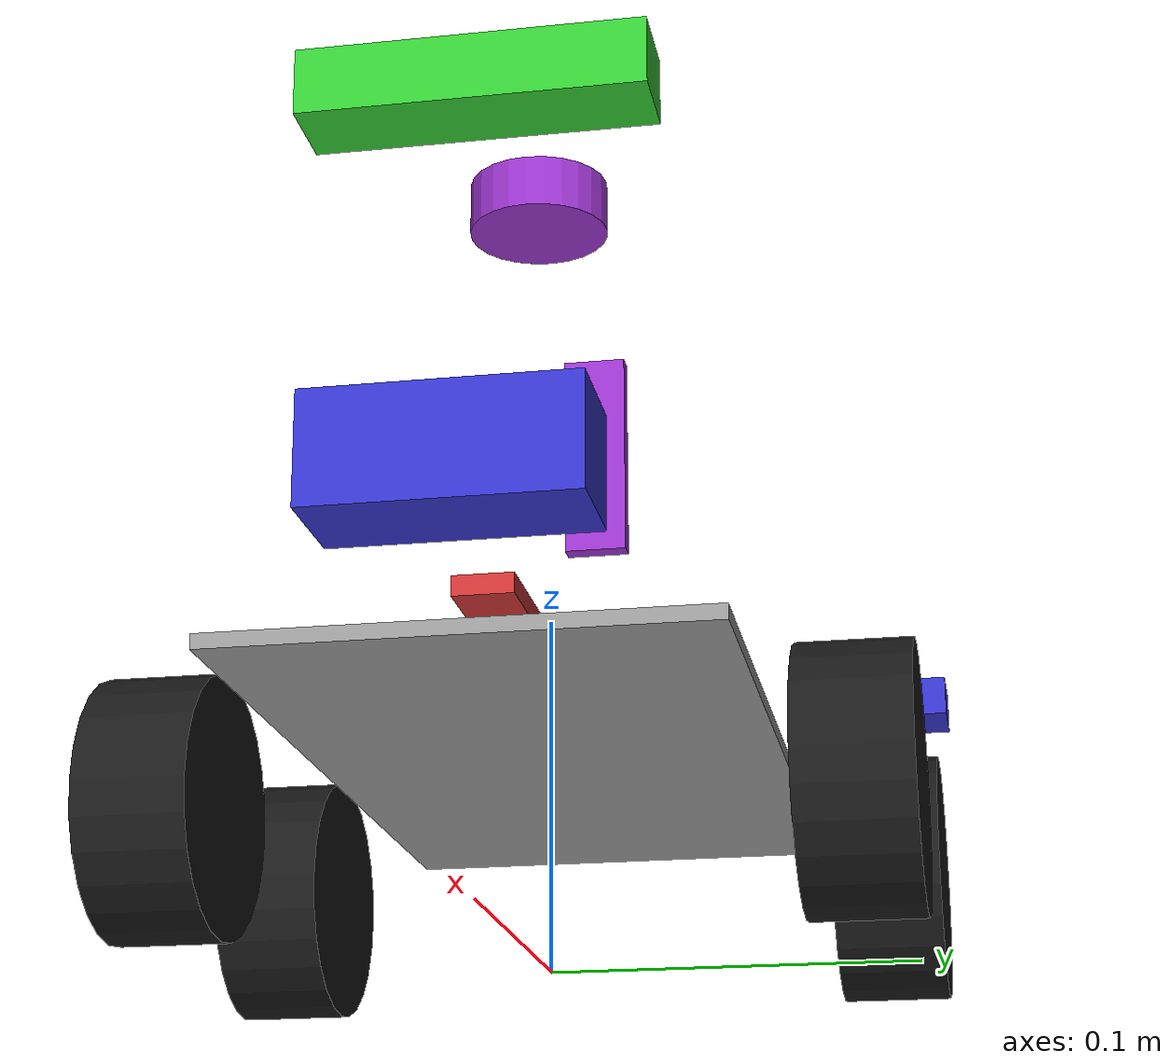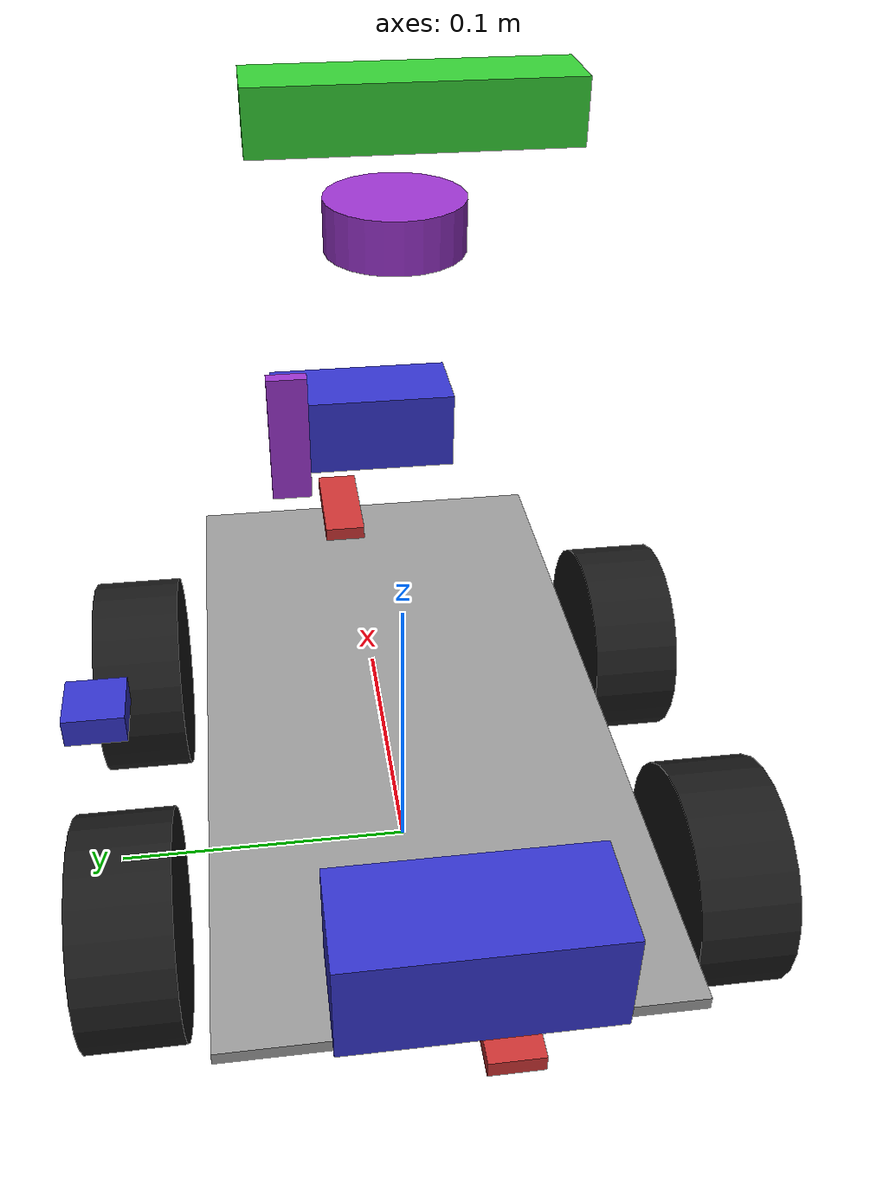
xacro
<?xml version="1.0"?>
<robot xmlns:xacro="http://www.ros.org/wiki/xacro" name="jetcar">

  <xacro:arg name="sim_mode" default="false"/>

  <!-- Material Definitions -->
  <material name="gray"><color rgba="0.6 0.6 0.6 1"/></material>
  <material name="black"><color rgba="0.1 0.1 0.1 1"/></material>
  <material name="blue"><color rgba="0.2 0.2 0.8 1"/></material>
  <material name="red"><color rgba="0.8 0.2 0.2 1"/></material>
  <material name="green"><color rgba="0.2 0.8 0.2 1"/></material>
  <material name="yellow"><color rgba="0.8 0.8 0.2 1"/></material>
  <material name="purple"><color rgba="0.6 0.2 0.8 1"/></material>

  <!-- Chassis (base_link) -->
  <link name="base_link">
    <visual>
      <geometry><box size="0.25 0.13 0.004"/></geometry>
      <origin xyz="0 0 0.06"/>
      <material name="gray"/>
    </visual>
    <collision>
      <geometry><box size="0.25 0.13 0.05"/></geometry>
      <origin xyz="0 0 0.07"/>
    </collision>
    <inertial>
      <mass value="2.0"/>
      <origin xyz="0 0 0.04"/>
      <inertia ixx="0.01" ixy="0.0" ixz="0.0" iyy="0.02" iyz="0.0" izz="0.03"/>
    </inertial>
  </link>

  <!-- Wheels Macro -->
  <xacro:macro name="wheel" params="prefix x y">
    <link name="wheel_${prefix}">
      <visual>
        <geometry><cylinder length="0.03" radius="0.035"/></geometry>
        <origin xyz="0 0 0" rpy="1.5708 0 0"/>
        <material name="black"/>
      </visual>
      <collision>
        <geometry><sphere radius="0.035"/></geometry>
        <origin xyz="0 0 0" rpy="0 0 0"/>
      </collision>
      <inertial>
        <mass value="0.5"/>
        <inertia ixx="0.001" ixy="0" ixz="0" iyy="0.001" iyz="0" izz="0.001"/>
      </inertial>
    </link>
    <joint name="joint_wheel_${prefix}" type="continuous">
      <parent link="base_link"/>
      <child link="wheel_${prefix}"/>
      <origin xyz="${x} ${y} 0.035" rpy="0 0 0"/>
      <axis xyz="0 1 0"/>
      <dynamics damping="0.3" friction="0.1"/>
    </joint>
  </xacro:macro>

  <xacro:wheel prefix="fl" x="0.06" y="0.09"/>
  <xacro:wheel prefix="fr" x="0.06" y="-0.09"/>
  <xacro:wheel prefix="rl" x="-0.06" y="0.09"/>
  <xacro:wheel prefix="rr" x="-0.06" y="-0.09"/>

  <!-- Sensors & Accessories -->
  <link name="front_sonar"><visual><geometry><box size="0.03 0.07 0.03"/></geometry><origin xyz="0 0 0.06"/><material name="blue"/></visual></link>
  <joint name="joint_sr04_front" type="fixed"><parent link="base_link"/><child link="front_sonar"/><origin xyz="0.13 0 0.04"/></joint>

  <link name="rear_sonar"><visual><geometry><box size="0.03 0.07 0.03"/></geometry><origin xyz="0 0 0.06"/><material name="blue"/></visual></link>
  <joint name="joint_sr04_rear" type="fixed"><parent link="base_link"/><child link="rear_sonar"/><origin xyz="-0.13 0 0.04" rpy="0 0 3.14159"/></joint>

  <!-- Cliff Sensors -->
  <link name="cliff_front"><visual><geometry><box size="0.04 0.015 0.005"/></geometry><origin xyz="0 0 0.055"/><material name="red"/></visual></link>
  <joint name="joint_cliff_front" type="fixed"><parent link="base_link"/><child link="cliff_front"/><origin xyz="0.12 0.01 0.01"/></joint>

  <link name="cliff_rear"><visual><geometry><box size="0.04 0.015 0.005"/></geometry><origin xyz="0 0 0.055"/><material name="red"/></visual></link>
  <joint name="joint_cliff_rear" type="fixed"><parent link="base_link"/><child link="cliff_rear"/><origin xyz="-0.12 -0.01 0.01"/></joint>

  <!-- Camera -->
  <link name="camera_binoc"><visual><geometry><box size="0.025 0.10 0.02"/></geometry><origin xyz="0 0 0.06"/><material name="green"/></visual></link>
  <joint name="joint_camera_binoc" type="fixed"><parent link="base_link"/><child link="camera_binoc"/><origin xyz="0.06 -0.01 0.18"/></joint>

  <link name="camera_link"/>
  <joint name="joint_camera_link" type="fixed"><parent link="camera_binoc"/><child link="camera_link"/><origin xyz="0 0 0"/></joint>

  <!-- Logical Frames for RealSense -->
  <link name="camera_depth_frame"/>
  <joint name="joint_camera_depth_frame" type="fixed"><parent link="camera_link"/><child link="camera_depth_frame"/><origin xyz="0 0 0"/></joint>
  <link name="camera_depth_optical_frame"/>
  <joint name="joint_camera_depth_optical_frame" type="fixed"><parent link="camera_depth_frame"/><child link="camera_depth_optical_frame"/><origin xyz="0 0 0" rpy="-1.5708 0 -1.5708"/></joint>

  <link name="camera_infra1_frame"/>
  <joint name="joint_camera_infra1_frame" type="fixed"><parent link="camera_link"/><child link="camera_infra1_frame"/><origin xyz="0 0.025 0"/></joint>
  <link name="camera_infra1_optical_frame"/>
  <joint name="joint_camera_infra1_optical_frame" type="fixed"><parent link="camera_infra1_frame"/><child link="camera_infra1_optical_frame"/><origin xyz="0 0 0" rpy="-1.5708 0 -1.5708"/></joint>

  <link name="camera_infra2_frame"/>
  <joint name="joint_camera_infra2_frame" type="fixed"><parent link="camera_link"/><child link="camera_infra2_frame"/><origin xyz="0 -0.025 0"/></joint>
  <link name="camera_infra2_optical_frame"/>
  <joint name="joint_camera_infra2_optical_frame" type="fixed"><parent link="camera_infra2_frame"/><child link="camera_infra2_optical_frame"/><origin xyz="0 0 0" rpy="-1.5708 0 -1.5708"/></joint>

  <!-- Lidar & Other Sensors -->
  <link name="ld06_lidar"><visual><geometry><cylinder length="0.015" radius="0.02"/></geometry><material name="purple"/></visual><inertial><mass value="0.1"/><inertia ixx="0.001" ixy="0" ixz="0" iyy="0.001" iyz="0" izz="0.001"/></inertial></link>
  <joint name="joint_ld06" type="fixed"><parent link="base_link"/><child link="ld06_lidar"/><origin xyz="0.02 0.0 0.22" rpy="0 0 -1.5708"/></joint>

  <link name="imu_link"><visual><geometry><box size="0.02 0.02 0.01"/></geometry><material name="blue"/></visual><inertial><mass value="0.01"/><inertia ixx="0.0001" ixy="0" ixz="0" iyy="0.0001" iyz="0" izz="0.0001"/></inertial></link>
  <joint name="joint_imu" type="fixed"><parent link="base_link"/><child link="imu_link"/><origin xyz="0 0.1 0.07"/></joint>

  <!-- ToF & Radar (Visuals only) -->
  <link name="vl53l5x_front"><visual><geometry><box size="0.01 0.02 0.01"/></geometry><origin xyz="0 0 0.06"/><material name="yellow"/></visual></link>
  <joint name="joint_vl53l5x_front" type="fixed"><parent link="base_link"/><child link="vl53l5x_front"/><origin xyz="0.13 0 0.045"/></joint>

  <link name="ld2450_front"><visual><geometry><box size="0.005 0.015 0.05"/></geometry><origin xyz="0 0 0.06"/><material name="purple"/></visual></link>
  <joint name="joint_ld2450_front" type="fixed"><parent link="base_link"/><child link="ld2450_front"/><origin xyz="0.1 0.03 0.05"/></joint>

  <!-- Simulation Specific Tags -->
  <xacro:if value="$(arg sim_mode)">
    <ros2_control name="GazeboSimSystem" type="system">
      <hardware><plugin>ign_ros2_control/IgnitionSystem</plugin></hardware>
      <joint name="joint_wheel_fl"><command_interface name="effort"/><state_interface name="position"/><state_interface name="velocity"/><state_interface name="effort"/></joint>
      <joint name="joint_wheel_fr"><command_interface name="effort"/><state_interface name="position"/><state_interface name="velocity"/><state_interface name="effort"/></joint>
      <joint name="joint_wheel_rl"><command_interface name="effort"/><state_interface name="position"/><state_interface name="velocity"/><state_interface name="effort"/></joint>
      <joint name="joint_wheel_rr"><command_interface name="effort"/><state_interface name="position"/><state_interface name="velocity"/><state_interface name="effort"/></joint>
    </ros2_control>

    <gazebo>
      <plugin filename="ign_ros2_control-system" name="ign_ros2_control::IgnitionROS2ControlPlugin">
        <parameters>$(find jetcar_sim)/config/sim_controllers.yaml</parameters>
      </plugin>
      <plugin filename="libignition-gazebo-odometry-publisher-system.so" name="ignition::gazebo::systems::OdometryPublisher">
        <odom_frame>odom</odom_frame>
        <robot_base_frame>base_link</robot_base_frame>
        <odom_publish_frequency>50</odom_publish_frequency>
        <tf_topic>/model/jetcar/tf</tf_topic>
      </plugin>
    </gazebo>

    <gazebo reference="camera_binoc">
      <sensor name="camera" type="rgbd">
        <gz_frame_id>camera_binoc</gz_frame_id>
        <topic>/model/jetcar/sensor/camera</topic>
        <always_on>true</always_on>
        <update_rate>15</update_rate>
        <camera>
          <horizontal_fov>1.204</horizontal_fov>
          <image><width>424</width><height>240</height><format>R8G8B8</format></image>
          <clip><near>0.1</near><far>10.0</far></clip>
        </camera>
      </sensor>
    </gazebo>

    <!-- Left IR (Infra1) -->
    <gazebo reference="camera_infra1_frame">
      <sensor name="camera_infra1" type="camera">
        <gz_frame_id>camera_infra1_frame</gz_frame_id>
        <topic>/model/jetcar/sensor/camera_infra1</topic>
        <always_on>true</always_on>
        <update_rate>15</update_rate>
        <camera>
          <horizontal_fov>1.204</horizontal_fov>
          <image><width>424</width><height>240</height><format>L8</format></image>
          <clip><near>0.1</near><far>10.0</far></clip>
        </camera>
      </sensor>
    </gazebo>

    <!-- Right IR (Infra2) -->
    <gazebo reference="camera_infra2_frame">
      <sensor name="camera_infra2" type="camera">
        <gz_frame_id>camera_infra2_frame</gz_frame_id>
        <topic>/model/jetcar/sensor/camera_infra2</topic>
        <always_on>true</always_on>
        <update_rate>15</update_rate>
        <camera>
          <horizontal_fov>1.204</horizontal_fov>
          <image><width>424</width><height>240</height><format>L8</format></image>
          <clip><near>0.1</near><far>10.0</far></clip>
        </camera>
      </sensor>
    </gazebo>

    <gazebo reference="ld06_lidar">
      <sensor name="ld06_lidar" type="gpu_lidar">
        <gz_frame_id>ld06_lidar</gz_frame_id>
        <topic>/model/jetcar/sensor/ld06_lidar/scan</topic>
        <always_on>true</always_on>
        <update_rate>10</update_rate>
        <lidar>
          <scan><horizontal><samples>360</samples><resolution>1</resolution><min_angle>-3.14159</min_angle><max_angle>3.14159</max_angle></horizontal></scan>
          <range><min>0.1</min><max>12.0</max></range>
        </lidar>
      </sensor>
    </gazebo>

    <gazebo reference="imu_link">
      <sensor name="imu_sensor" type="imu">
        <gz_frame_id>imu_link</gz_frame_id>
        <topic>/model/jetcar/sensor/imu_sensor/imu</topic>
        <always_on>true</always_on>
        <update_rate>50</update_rate>
      </sensor>
    </gazebo>

    <!-- Sonars. 0.15rad is 8.5 degrees of range. samples = 5 implies the beams used to sample distance across field of view.  -->
    <gazebo reference="front_sonar">
      <sensor name="front_sonar" type="gpu_lidar">
        <gz_frame_id>front_sonar</gz_frame_id>
        <topic>/model/jetcar/sensor/front_sonar/scan</topic>
        <always_on>true</always_on>
        <update_rate>5</update_rate>
        <lidar>
          <scan>
            <horizontal>
              <samples>5</samples>
              <resolution>1</resolution>
              <min_angle>-0.15</min_angle>
              <max_angle>0.15</max_angle>
            </horizontal>
          </scan>
          <range>
            <min>0.02</min>
            <max>4.0</max>
          </range>
        </lidar>
      </sensor>
    </gazebo>

    <gazebo reference="rear_sonar">
      <sensor name="rear_sonar" type="gpu_lidar">
        <gz_frame_id>rear_sonar</gz_frame_id>
        <topic>/model/jetcar/sensor/rear_sonar/scan</topic>
        <always_on>true</always_on>
        <update_rate>5</update_rate>
        <lidar>
          <scan>
            <horizontal>
              <samples>5</samples>
              <resolution>1</resolution>
              <min_angle>-0.15</min_angle>
              <max_angle>0.15</max_angle>
            </horizontal>
          </scan>
          <range>
            <min>0.02</min>
            <max>4.0</max>
          </range>
        </lidar>
      </sensor>
    </gazebo>

    <gazebo reference="wheel_fl"><collision><surface><friction><ode><mu>1.0</mu><mu2>1.0</mu2><fdir1>1 0 0</fdir1></ode></friction></surface></collision></gazebo>
    <gazebo reference="wheel_fr"><collision><surface><friction><ode><mu>1.0</mu><mu2>1.0</mu2><fdir1>1 0 0</fdir1></ode></friction></surface></collision></gazebo>
    <gazebo reference="wheel_rl"><collision><surface><friction><ode><mu>1.0</mu><mu2>1.0</mu2><fdir1>1 0 0</fdir1></ode></friction></surface></collision></gazebo>
    <gazebo reference="wheel_rr"><collision><surface><friction><ode><mu>1.0</mu><mu2>1.0</mu2><fdir1>1 0 0</fdir1></ode></friction></surface></collision></gazebo>
  </xacro:if>

</robot>
